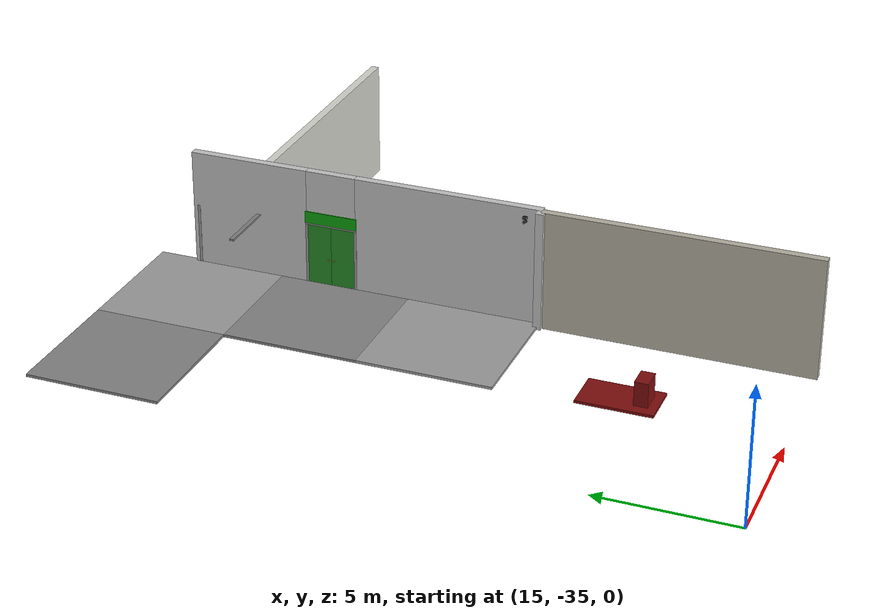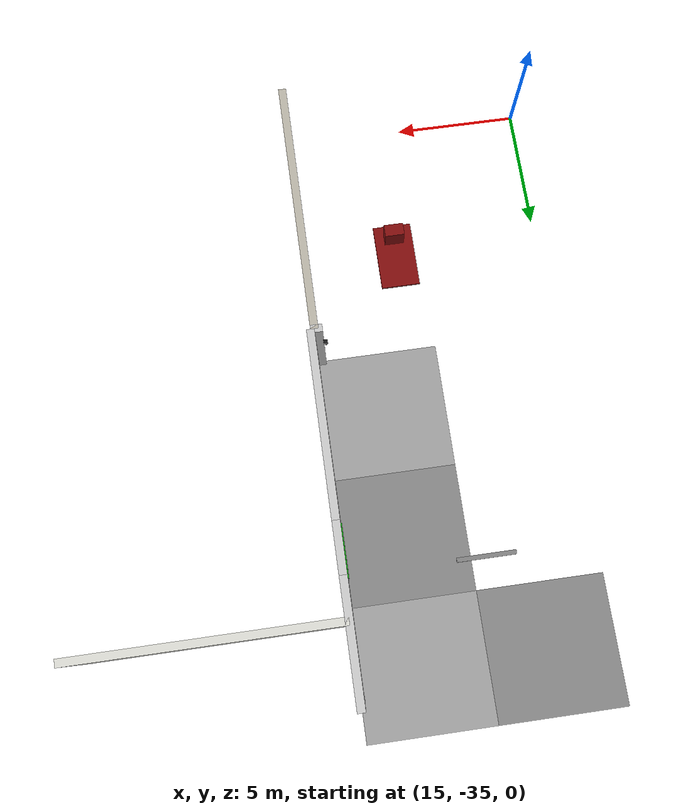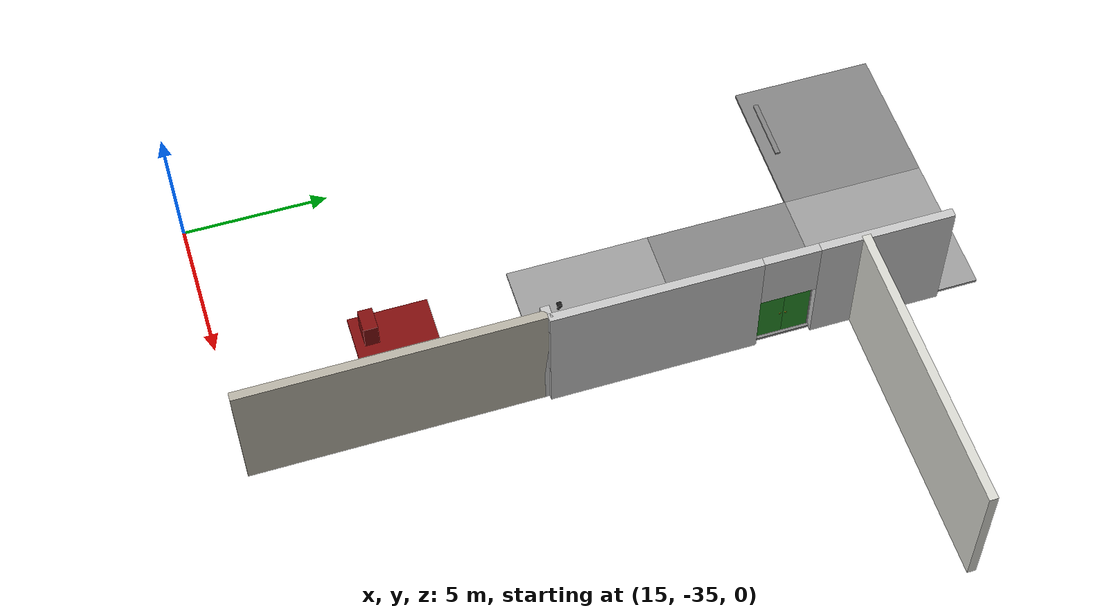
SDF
<sdf version="1.10">
 <world name="airport_terminal_world">
  <model name="vtile_8_2">
   <static>true</static>
   <pose>17.5 -12.5 0.05 0 0 0</pose>
   <link name="link">
    <visual name="vis">
     <geometry><box><size>5.0 5.0 0.1</size></box></geometry>
     <material><ambient>0.52 0.52 0.52 1.0</ambient><diffuse>0.52 0.52 0.52 1.0</diffuse></material>
    </visual>
   </link>
  </model>
  <model name="vtile_9_0">
   <static>true</static>
   <pose>22.5 -22.5 0.05 0 0 0</pose>
   <link name="link">
    <visual name="vis">
     <geometry><box><size>5.0 5.0 0.1</size></box></geometry>
     <material><ambient>0.62 0.62 0.62 1.0</ambient><diffuse>0.62 0.62 0.62 1.0</diffuse></material>
    </visual>
   </link>
  </model>
  <model name="vtile_9_1">
   <static>true</static>
   <pose>22.5 -17.5 0.05 0 0 0</pose>
   <link name="link">
    <visual name="vis">
     <geometry><box><size>5.0 5.0 0.1</size></box></geometry>
     <material><ambient>0.52 0.52 0.52 1.0</ambient><diffuse>0.52 0.52 0.52 1.0</diffuse></material>
    </visual>
   </link>
  </model>
  <model name="vtile_9_2">
   <static>true</static>
   <pose>22.5 -12.5 0.05 0 0 0</pose>
   <link name="link">
    <visual name="vis">
     <geometry><box><size>5.0 5.0 0.1</size></box></geometry>
     <material><ambient>0.62 0.62 0.62 1.0</ambient><diffuse>0.62 0.62 0.62 1.0</diffuse></material>
    </visual>
   </link>
  </model>
  <model name="wall_south_e">
   <static>true</static>
   <pose>24.775 -25.0 2.25 0 0 0</pose>
   <link name="link">
    <collision name="col"><geometry><box><size>0.45 0.3 4.5</size></box></geometry></collision>
    <visual name="vis">
     <geometry><box><size>0.45 0.3 4.5</size></box></geometry>
     <material><ambient>0.78 0.78 0.78 1.0</ambient><diffuse>0.78 0.78 0.78 1.0</diffuse></material>
    </visual>
   </link>
  </model>
  <model name="wall_east_s">
   <static>true</static>
   <pose>25.0 -21.475 2.25 0 0 0</pose>
   <link name="link">
    <collision name="col"><geometry><box><size>0.3 7.05 4.5</size></box></geometry></collision>
    <visual name="vis">
     <geometry><box><size>0.3 7.05 4.5</size></box></geometry>
     <material><ambient>0.78 0.78 0.78 1.0</ambient><diffuse>0.78 0.78 0.78 1.0</diffuse></material>
    </visual>
   </link>
  </model>
  <model name="wall_east_s2_seg1">
   <static>true</static>
   <pose>25.0 -13.775 2.25 0 0 0</pose>
   <link name="link">
    <collision name="col"><geometry><box><size>0.3 4.55 4.5</size></box></geometry></collision>
    <visual name="vis">
     <geometry><box><size>0.3 4.55 4.5</size></box></geometry>
     <material><ambient>0.78 0.78 0.78 1.0</ambient><diffuse>0.78 0.78 0.78 1.0</diffuse></material>
    </visual>
   </link>
  </model>
  <model name="toilet_women_frame_l">
   <static>true</static>
   <pose>24.87 -11.7 1.25 0 0 0</pose>
   <link name="link">
    <collision name="col"><geometry><box><size>0.06 0.1 2.3</size></box></geometry></collision>
    <visual name="vis">
     <geometry><box><size>0.06 0.1 2.3</size></box></geometry>
     <material><ambient>0.6 0.6 0.6 1.0</ambient><diffuse>0.6 0.6 0.6 1.0</diffuse></material>
    </visual>
   </link>
  </model>
  <model name="toilet_room_wall_south">
   <static>true</static>
   <pose>30.0 -14.5 2.25 0 0 0</pose>
   <link name="link">
    <collision name="col"><geometry><box><size>10.0 0.3 4.5</size></box></geometry></collision>
    <visual name="vis">
     <geometry><box><size>10.0 0.3 4.5</size></box></geometry>
     <material><ambient>0.85 0.85 0.82 1.0</ambient><diffuse>0.85 0.85 0.82 1.0</diffuse></material>
    </visual>
   </link>
  </model>
  <model name="wall_east_exit_top">
   <static>true</static>
   <pose>25.0 -17.0 3.45 0 0 0</pose>
   <link name="link">
    <collision name="col"><geometry><box><size>0.3 1.9 2.1</size></box></geometry></collision>
    <visual name="vis">
     <geometry><box><size>0.3 1.9 2.1</size></box></geometry>
     <material><ambient>0.78 0.78 0.78 1.0</ambient><diffuse>0.78 0.78 0.78 1.0</diffuse></material>
    </visual>
   </link>
  </model>
  <model name="lamp_d_20_strip">
   <static>true</static>
   <pose>20.0 -16.0 4.42 0 0 0</pose>
   <link name="link">
    <visual name="strip">
     <geometry><box><size>2.0 0.12 0.04</size></box></geometry>
     <material>
      <ambient>0.95 0.95 0.88 1.0</ambient>
      <diffuse>0.95 0.95 0.88 1.0</diffuse>
      <emissive>0.35 0.35 0.3 1.0</emissive>
     </material>
    </visual>
    <visual name="housing">
     <pose>0 0 0.03 0 0 0</pose>
     <geometry><box><size>2.1 0.16 0.06</size></box></geometry>
     <material><ambient>0.5 0.5 0.5 1.0</ambient><diffuse>0.5 0.5 0.5 1.0</diffuse></material>
    </visual>
   </link>
  </model>
  <model name="exit_east_door_l">
   <static>true</static>
   <pose>24.87 -17.45 1.2 0 0 0</pose>
   <link name="link">
    <collision name="col"><geometry><box><size>0.06 0.9 2.4</size></box></geometry></collision>
    <visual name="vis">
     <geometry><box><size>0.06 0.9 2.4</size></box></geometry>
     <material><ambient>0.15 0.55 0.15 1.0</ambient><diffuse>0.15 0.55 0.15 1.0</diffuse></material>
    </visual>
   </link>
  </model>
  <model name="exit_east_door_r">
   <static>true</static>
   <pose>24.87 -16.55 1.2 0 0 0</pose>
   <link name="link">
    <collision name="col"><geometry><box><size>0.06 0.9 2.4</size></box></geometry></collision>
    <visual name="vis">
     <geometry><box><size>0.06 0.9 2.4</size></box></geometry>
     <material><ambient>0.15 0.55 0.15 1.0</ambient><diffuse>0.15 0.55 0.15 1.0</diffuse></material>
    </visual>
   </link>
  </model>
  <model name="exit_east_handle_l">
   <static>true</static>
   <pose>24.87 -17.1 1.1 0 0 0</pose>
   <link name="link">
    <visual name="vis">
     <geometry><box><size>0.08 0.06 0.06</size></box></geometry>
     <material><ambient>0.7 0.6 0.1 1.0</ambient><diffuse>0.7 0.6 0.1 1.0</diffuse></material>
    </visual>
   </link>
  </model>
  <model name="exit_east_handle_r">
   <static>true</static>
   <pose>24.87 -16.9 1.1 0 0 0</pose>
   <link name="link">
    <visual name="vis">
     <geometry><box><size>0.08 0.06 0.06</size></box></geometry>
     <material><ambient>0.7 0.6 0.1 1.0</ambient><diffuse>0.7 0.6 0.1 1.0</diffuse></material>
    </visual>
   </link>
  </model>
  <model name="exit_east_sign">
   <static>true</static>
   <pose>24.87 -17.0 2.7 0 0 0</pose>
   <link name="link">
    <visual name="vis">
     <geometry><box><size>0.12 2.0 0.45</size></box></geometry>
     <material><ambient>0.05 0.65 0.05 1.0</ambient><diffuse>0.05 0.65 0.05 1.0</diffuse></material>
    </visual>
   </link>
  </model>
  <model name="exit_east_sign_txt">
   <static>true</static>
   <pose>24.87 -17.0 2.7 0 0 0</pose>
   <link name="link">
    <visual name="vis">
     <geometry><box><size>0.05 1.8 0.28</size></box></geometry>
     <material><ambient>0.92 0.92 0.92 1.0</ambient><diffuse>0.92 0.92 0.92 1.0</diffuse></material>
    </visual>
   </link>
  </model>
  <model name="exit_east_frame_l">
   <static>true</static>
   <pose>24.87 -17.95 1.2 0 0 0</pose>
   <link name="link">
    <collision name="col"><geometry><box><size>0.06 0.1 2.4</size></box></geometry></collision>
    <visual name="vis">
     <geometry><box><size>0.06 0.1 2.4</size></box></geometry>
     <material><ambient>0.6 0.6 0.6 1.0</ambient><diffuse>0.6 0.6 0.6 1.0</diffuse></material>
    </visual>
   </link>
  </model>
  <model name="exit_east_frame_r">
   <static>true</static>
   <pose>24.87 -16.05 1.2 0 0 0</pose>
   <link name="link">
    <collision name="col"><geometry><box><size>0.06 0.1 2.4</size></box></geometry></collision>
    <visual name="vis">
     <geometry><box><size>0.06 0.1 2.4</size></box></geometry>
     <material><ambient>0.6 0.6 0.6 1.0</ambient><diffuse>0.6 0.6 0.6 1.0</diffuse></material>
    </visual>
   </link>
  </model>
  <model name="exit_east_frame_t">
   <static>true</static>
   <pose>24.87 -17.0 2.45 0 0 0</pose>
   <link name="link">
    <visual name="vis">
     <geometry><box><size>0.06 2.0 0.1</size></box></geometry>
     <material><ambient>0.6 0.6 0.6 1.0</ambient><diffuse>0.6 0.6 0.6 1.0</diffuse></material>
    </visual>
   </link>
  </model>
  <model name="charging_station_1">
   <static>true</static>
   <pose>21.0 -30.0 0.5 0 0 0</pose>
   <link name="link">
    <visual name="vis">
     <geometry><box><size>0.8 0.5 1.0</size></box></geometry>
     <material><ambient>0.5 0.05 0.05 1.0</ambient><diffuse>0.5 0.05 0.05 1.0</diffuse></material>
    </visual>
   </link>
  </model>
  <model name="charge_pad_1">
   <static>true</static>
   <pose>21.0 -29.2 0.051 0 0 0</pose>
   <link name="link">
    <visual name="vis">
     <geometry><box><size>1.6 2.75 0.1</size></box></geometry>
     <material><ambient>0.5 0.05 0.05 1.0</ambient><diffuse>0.5 0.05 0.05 1.0</diffuse></material>
    </visual>
   </link>
  </model>
  <model name="garage_wall_east">
   <static>true</static>
   <pose>24.85 -30.0 2.25 0 0 0</pose>
   <link name="link">
    <collision name="col"><geometry><box><size>0.3 10.0 4.5</size></box></geometry></collision>
    <visual name="vis">
     <geometry><box><size>0.3 10.0 4.5</size></box></geometry>
     <material><ambient>0.72 0.7 0.65 1.0</ambient><diffuse>0.72 0.7 0.65 1.0</diffuse></material>
    </visual>
   </link>
  </model>
  <model name="camera_se_mount">
   <static>true</static>
   <pose>24.5 -24.5 4.3 0 0 0</pose>
   <link name="link">
    <visual name="vis">
     <geometry><box><size>0.15 0.15 0.08</size></box></geometry>
     <material><ambient>0.1 0.1 0.1 1.0</ambient><diffuse>0.1 0.1 0.1 1.0</diffuse></material>
    </visual>
   </link>
  </model>
  <model name="camera_se_body">
   <static>true</static>
   <pose>24.5 -24.5 4.15 0 1.9199 2.3562</pose>
   <link name="link">
    <visual name="vis">
     <geometry><cylinder><radius>0.05</radius><length>0.16</length></cylinder></geometry>
     <material><ambient>0.12 0.12 0.12 1.0</ambient><diffuse>0.12 0.12 0.12 1.0</diffuse></material>
    </visual>
    <sensor name="camera_se" type="camera">
     <pose>0 0 0 0 -1.5708 0</pose>
     <topic>/surveillance/se</topic>
     <update_rate>10.0</update_rate>
     <camera>
      <horizontal_fov>1.9199</horizontal_fov>
      <image><width>1280.0</width><height>720.0</height></image>
      <clip><near>0.1</near><far>70.0</far></clip>
     </camera>
     <always_on>false</always_on>
     <visualize>false</visualize>
    </sensor>
   </link>
  </model>
 </world>
</sdf>
